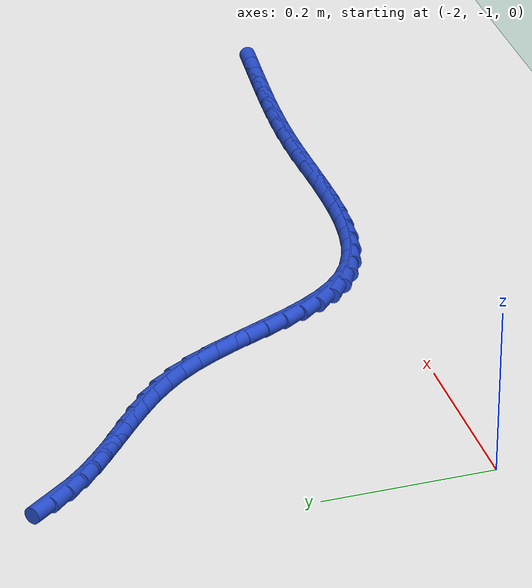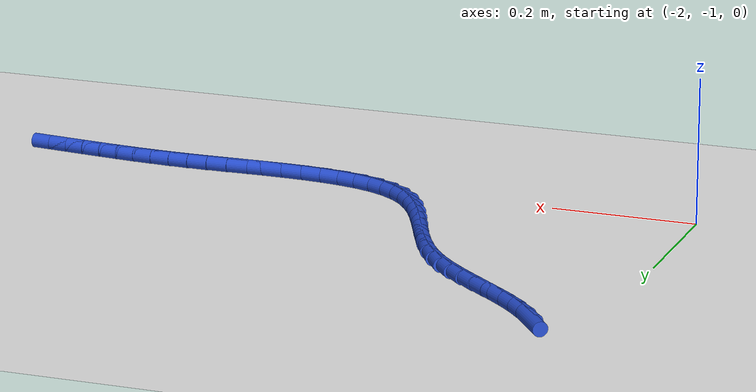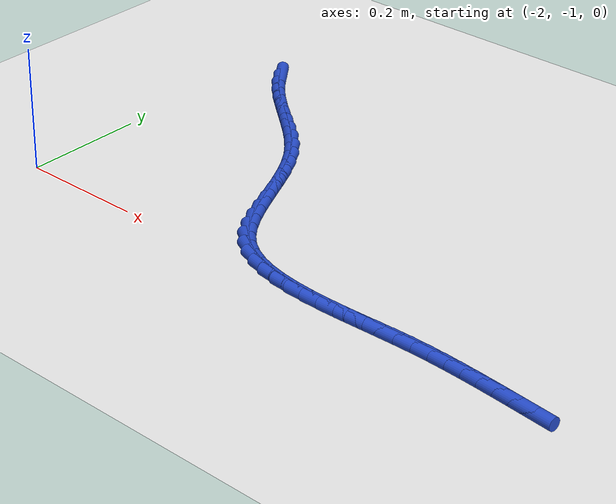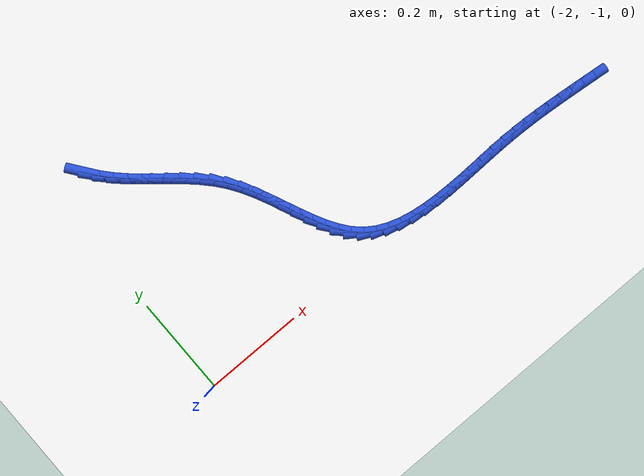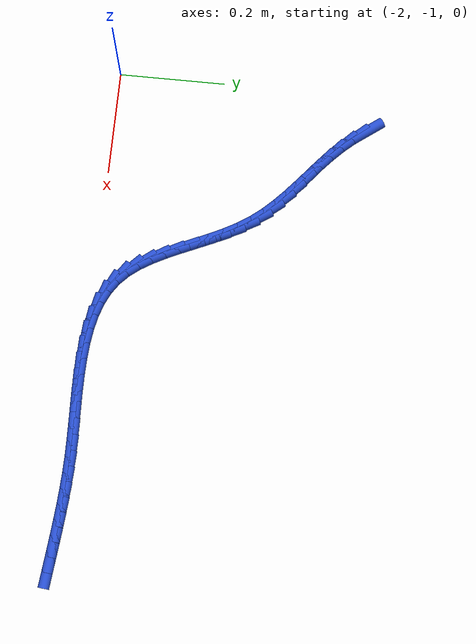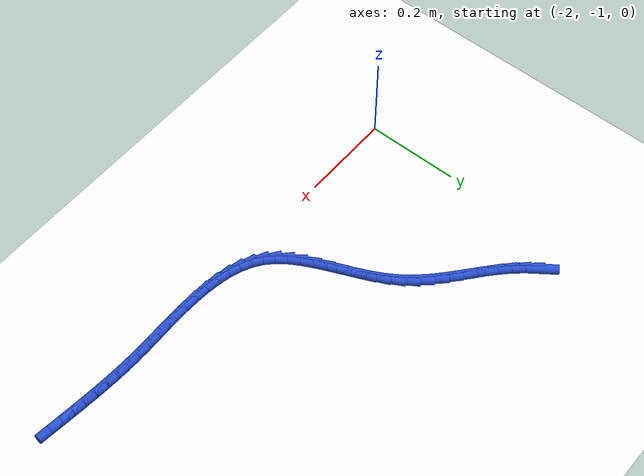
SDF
<sdf version="1.6">
 <world name="default">
  <model name="ground_plane">
   <static>1</static>
   <link name="link">
    <collision name="collision">
     <geometry><plane><normal>0 0 1</normal><size>100 100</size></plane></geometry>
     <surface><friction><ode><mu>100</mu><mu2>50</mu2></ode></friction></surface>
    </collision>
    <visual name="visual">
     <cast_shadows>0</cast_shadows>
     <geometry><plane><normal>0 0 1</normal><size>100 100</size></plane></geometry>
     <material>
      <script><uri>file://media/materials/scripts/gazebo.material</uri><name>Gazebo/WhiteGlow</name></script>
     </material>
    </visual>
   </link>
  </model>
  <model name="line">
   <link name="link_140">
    <pose>-1.9223482389673763 -0.5277540960913943 0.01 0 1.57 -0.9330856274969781</pose>
    <collision name="collision">
     <geometry><cylinder><radius>0.01</radius><length>0.08</length></cylinder></geometry>
    </collision>
    <visual name="visual">
     <material>
      <script><name>Gazebo/Blue</name><uri>file://media/materials/scripts/gazebo.material</uri></script>
     </material>
     <geometry><cylinder><radius>0.01</radius><length>0.08</length></cylinder></geometry>
    </visual>
   </link>
   <link name="link_141">
    <pose>-1.906208143145568 -0.5495358515870702 0.01 0 1.57 -0.846612982868887</pose>
    <collision name="collision">
     <geometry><cylinder><radius>0.01</radius><length>0.08</length></cylinder></geometry>
    </collision>
    <visual name="visual">
     <material>
      <script><name>Gazebo/Blue</name><uri>file://media/materials/scripts/gazebo.material</uri></script>
     </material>
     <geometry><cylinder><radius>0.01</radius><length>0.08</length></cylinder></geometry>
    </visual>
   </link>
   <link name="link_142">
    <pose>-1.8882506804202601 -0.5698383188616343 0.01 0 1.57 -0.7762770678654984</pose>
    <collision name="collision">
     <geometry><cylinder><radius>0.01</radius><length>0.08</length></cylinder></geometry>
    </collision>
    <visual name="visual">
     <material>
      <script><name>Gazebo/Blue</name><uri>file://media/materials/scripts/gazebo.material</uri></script>
     </material>
     <geometry><cylinder><radius>0.01</radius><length>0.08</length></cylinder></geometry>
    </visual>
   </link>
   <link name="link_143">
    <pose>-1.8687967788251691 -0.5889405366556759 0.01 0 1.57 -0.7286088435730407</pose>
    <collision name="collision">
     <geometry><cylinder><radius>0.01</radius><length>0.08</length></cylinder></geometry>
    </collision>
    <visual name="visual">
     <material>
      <script><name>Gazebo/Blue</name><uri>file://media/materials/scripts/gazebo.material</uri></script>
     </material>
     <geometry><cylinder><radius>0.01</radius><length>0.08</length></cylinder></geometry>
    </visual>
   </link>
   <link name="link_144">
    <pose>-1.848290756728871 -0.6072404253498115 0.01 0 1.57 -0.7030840493400263</pose>
    <collision name="collision">
     <geometry><cylinder><radius>0.01</radius><length>0.08</length></cylinder></geometry>
    </collision>
    <visual name="visual">
     <material>
      <script><name>Gazebo/Blue</name><uri>file://media/materials/scripts/gazebo.material</uri></script>
     </material>
     <geometry><cylinder><radius>0.01</radius><length>0.08</length></cylinder></geometry>
    </visual>
   </link>
   <link name="link_145">
    <pose>-1.8271769610789375 -0.6251359328593733 0.01 0 1.57 -0.6991062637994179</pose>
    <collision name="collision">
     <geometry><cylinder><radius>0.01</radius><length>0.08</length></cylinder></geometry>
    </collision>
    <visual name="visual">
     <material>
      <script><name>Gazebo/Blue</name><uri>file://media/materials/scripts/gazebo.material</uri></script>
     </material>
     <geometry><cylinder><radius>0.01</radius><length>0.08</length></cylinder></geometry>
    </visual>
   </link>
   <link name="link_146">
    <pose>-1.8058997388229396 -0.6430250070996935 0.01 0 1.57 -0.7163652625239186</pose>
    <collision name="collision">
     <geometry><cylinder><radius>0.01</radius><length>0.08</length></cylinder></geometry>
    </collision>
    <visual name="visual">
     <material>
      <script><name>Gazebo/Blue</name><uri>file://media/materials/scripts/gazebo.material</uri></script>
     </material>
     <geometry><cylinder><radius>0.01</radius><length>0.08</length></cylinder></geometry>
    </visual>
   </link>
   <link name="link_147">
    <pose>-1.7849034369084493 -0.6613055959861046 0.01 0 1.57 -0.7548801876550394</pose>
    <collision name="collision">
     <geometry><cylinder><radius>0.01</radius><length>0.08</length></cylinder></geometry>
    </collision>
    <visual name="visual">
     <material>
      <script><name>Gazebo/Blue</name><uri>file://media/materials/scripts/gazebo.material</uri></script>
     </material>
     <geometry><cylinder><radius>0.01</radius><length>0.08</length></cylinder></geometry>
    </visual>
   </link>
   <link name="link_148">
    <pose>-1.764632402283037 -0.6803756474339379 0.01 0 1.57 -0.8147615294196001</pose>
    <collision name="collision">
     <geometry><cylinder><radius>0.01</radius><length>0.08</length></cylinder></geometry>
    </collision>
    <visual name="visual">
     <material>
      <script><name>Gazebo/Blue</name><uri>file://media/materials/scripts/gazebo.material</uri></script>
     </material>
     <geometry><cylinder><radius>0.01</radius><length>0.08</length></cylinder></geometry>
    </visual>
   </link>
   <link name="link_149">
    <pose>-1.745530981894275 -0.7006331093585256 0.01 0 1.57 -0.895686924525156</pose>
    <collision name="collision">
     <geometry><cylinder><radius>0.01</radius><length>0.08</length></cylinder></geometry>
    </collision>
    <visual name="visual">
     <material>
      <script><name>Gazebo/Blue</name><uri>file://media/materials/scripts/gazebo.material</uri></script>
     </material>
     <geometry><cylinder><radius>0.01</radius><length>0.08</length></cylinder></geometry>
    </visual>
   </link>
   <link name="link_150">
    <pose>-1.728043522689734 -0.7224759296752005 0.01 0 1.57 -0.9910408552351094</pose>
    <collision name="collision">
     <geometry><cylinder><radius>0.01</radius><length>0.08</length></cylinder></geometry>
    </collision>
    <visual name="visual">
     <material>
      <script><name>Gazebo/Blue</name><uri>file://media/materials/scripts/gazebo.material</uri></script>
     </material>
     <geometry><cylinder><radius>0.01</radius><length>0.08</length></cylinder></geometry>
    </visual>
   </link>
   <link name="link_151">
    <pose>-1.7125115265817583 -0.7461954548987909 0.01 0 1.57 -1.0695132190711465</pose>
    <collision name="collision">
     <geometry><cylinder><radius>0.01</radius><length>0.08</length></cylinder></geometry>
    </collision>
    <visual name="visual">
     <material>
      <script><name>Gazebo/Blue</name><uri>file://media/materials/scripts/gazebo.material</uri></script>
     </material>
     <geometry><cylinder><radius>0.01</radius><length>0.08</length></cylinder></geometry>
    </visual>
   </link>
   <link name="link_152">
    <pose>-1.6986702541919536 -0.7714546475828336 0.01 0 1.57 -1.1218790707168431</pose>
    <collision name="collision">
     <geometry><cylinder><radius>0.01</radius><length>0.08</length></cylinder></geometry>
    </collision>
    <visual name="visual">
     <material>
      <script><name>Gazebo/Blue</name><uri>file://media/materials/scripts/gazebo.material</uri></script>
     </material>
     <geometry><cylinder><radius>0.01</radius><length>0.08</length></cylinder></geometry>
    </visual>
   </link>
   <link name="link_153">
    <pose>-1.6860335910732098 -0.797687009594606 0.01 0 1.57 -1.1500959827485644</pose>
    <collision name="collision">
     <geometry><cylinder><radius>0.01</radius><length>0.08</length></cylinder></geometry>
    </collision>
    <visual name="visual">
     <material>
      <script><name>Gazebo/Blue</name><uri>file://media/materials/scripts/gazebo.material</uri></script>
     </material>
     <geometry><cylinder><radius>0.01</radius><length>0.08</length></cylinder></geometry>
    </visual>
   </link>
   <link name="link_154">
    <pose>-1.6741150971118652 -0.8243257052400209 0.01 0 1.57 -1.1551395692699147</pose>
    <collision name="collision">
     <geometry><cylinder><radius>0.01</radius><length>0.08</length></cylinder></geometry>
    </collision>
    <visual name="visual">
     <material>
      <script><name>Gazebo/Blue</name><uri>file://media/materials/scripts/gazebo.material</uri></script>
     </material>
     <geometry><cylinder><radius>0.01</radius><length>0.08</length></cylinder></geometry>
    </visual>
   </link>
   <link name="link_155">
    <pose>-1.6624283321942568 -0.8508038988249901 0.01 0 1.57 -1.1365823651312394</pose>
    <collision name="collision">
     <geometry><cylinder><radius>0.01</radius><length>0.08</length></cylinder></geometry>
    </collision>
    <visual name="visual">
     <material>
      <script><name>Gazebo/Blue</name><uri>file://media/materials/scripts/gazebo.material</uri></script>
     </material>
     <geometry><cylinder><radius>0.01</radius><length>0.08</length></cylinder></geometry>
    </visual>
   </link>
   <link name="link_156">
    <pose>-1.6504868562067236 -0.8765547546554244 0.01 0 1.57 -1.0923992828780926</pose>
    <collision name="collision">
     <geometry><cylinder><radius>0.01</radius><length>0.08</length></cylinder></geometry>
    </collision>
    <visual name="visual">
     <material>
      <script><name>Gazebo/Blue</name><uri>file://media/materials/scripts/gazebo.material</uri></script>
     </material>
     <geometry><cylinder><radius>0.01</radius><length>0.08</length></cylinder></geometry>
    </visual>
   </link>
   <link name="link_157">
    <pose>-1.6378042290356025 -0.9010114370372361 0.01 0 1.57 -1.0189748012328272</pose>
    <collision name="collision">
     <geometry><cylinder><radius>0.01</radius><length>0.08</length></cylinder></geometry>
    </collision>
    <visual name="visual">
     <material>
      <script><name>Gazebo/Blue</name><uri>file://media/materials/scripts/gazebo.material</uri></script>
     </material>
     <geometry><cylinder><radius>0.01</radius><length>0.08</length></cylinder></geometry>
    </visual>
   </link>
   <link name="link_158">
    <pose>-1.623894010567231 -0.9236071102763368 0.01 0 1.57 -0.9116664858856686</pose>
    <collision name="collision">
     <geometry><cylinder><radius>0.01</radius><length>0.08</length></cylinder></geometry>
    </collision>
    <visual name="visual">
     <material>
      <script><name>Gazebo/Blue</name><uri>file://media/materials/scripts/gazebo.material</uri></script>
     </material>
     <geometry><cylinder><radius>0.01</radius><length>0.08</length></cylinder></geometry>
    </visual>
   </link>
   <link name="link_159">
    <pose>-1.6082697606879472 -0.9437749386786386 0.01 0 1.57 -0.7668106619313282</pose>
    <collision name="collision">
     <geometry><cylinder><radius>0.01</radius><length>0.08</length></cylinder></geometry>
    </collision>
    <visual name="visual">
     <material>
      <script><name>Gazebo/Blue</name><uri>file://media/materials/scripts/gazebo.material</uri></script>
     </material>
     <geometry><cylinder><radius>0.01</radius><length>0.08</length></cylinder></geometry>
    </visual>
   </link>
   <link name="link_160">
    <pose>-1.5904454847217435 -0.9609486152231836 0.01 0 1.57 -0.598264933200944</pose>
    <collision name="collision">
     <geometry><cylinder><radius>0.01</radius><length>0.08</length></cylinder></geometry>
    </collision>
    <visual name="visual">
     <material>
      <script><name>Gazebo/Blue</name><uri>file://media/materials/scripts/gazebo.material</uri></script>
     </material>
     <geometry><cylinder><radius>0.01</radius><length>0.08</length></cylinder></geometry>
    </visual>
   </link>
   <link name="link_161">
    <pose>-1.570131312769 -0.9747946059795239 0.01 0 1.57 -0.44529202706095866</pose>
    <collision name="collision">
     <geometry><cylinder><radius>0.01</radius><length>0.08</length></cylinder></geometry>
    </collision>
    <visual name="visual">
     <material>
      <script><name>Gazebo/Blue</name><uri>file://media/materials/scripts/gazebo.material</uri></script>
     </material>
     <geometry><cylinder><radius>0.01</radius><length>0.08</length></cylinder></geometry>
    </visual>
   </link>
   <link name="link_162">
    <pose>-1.5475403903581038 -0.9855763870325077 0.01 0 1.57 -0.31748713642335363</pose>
    <collision name="collision">
     <geometry><cylinder><radius>0.01</radius><length>0.08</length></cylinder></geometry>
    </collision>
    <visual name="visual">
     <material>
      <script><name>Gazebo/Blue</name><uri>file://media/materials/scripts/gazebo.material</uri></script>
     </material>
     <geometry><cylinder><radius>0.01</radius><length>0.08</length></cylinder></geometry>
    </visual>
   </link>
   <link name="link_163">
    <pose>-1.5229653776506862 -0.9936518073823366 0.01 0 1.57 -0.21467178880289775</pose>
    <collision name="collision">
     <geometry><cylinder><radius>0.01</radius><length>0.08</length></cylinder></geometry>
    </collision>
    <visual name="visual">
     <material>
      <script><name>Gazebo/Blue</name><uri>file://media/materials/scripts/gazebo.material</uri></script>
     </material>
     <geometry><cylinder><radius>0.01</radius><length>0.08</length></cylinder></geometry>
    </visual>
   </link>
   <link name="link_164">
    <pose>-1.4966989348083815 -0.999378716029215 0.01 0 1.57 -0.13423992547458968</pose>
    <collision name="collision">
     <geometry><cylinder><radius>0.01</radius><length>0.08</length></cylinder></geometry>
    </collision>
    <visual name="visual">
     <material>
      <script><name>Gazebo/Blue</name><uri>file://media/materials/scripts/gazebo.material</uri></script>
     </material>
     <geometry><cylinder><radius>0.01</radius><length>0.08</length></cylinder></geometry>
    </visual>
   </link>
   <link name="link_165">
    <pose>-1.4690337219928198 -1.0031149619733457 0.01 0 1.57 -0.07297880306001986</pose>
    <collision name="collision">
     <geometry><cylinder><radius>0.01</radius><length>0.08</length></cylinder></geometry>
    </collision>
    <visual name="visual">
     <material>
      <script><name>Gazebo/Blue</name><uri>file://media/materials/scripts/gazebo.material</uri></script>
     </material>
     <geometry><cylinder><radius>0.01</radius><length>0.08</length></cylinder></geometry>
    </visual>
   </link>
   <link name="link_166">
    <pose>-1.4402623993656345 -1.0052183942149326 0.01 0 1.57 -0.02799585807324242</pose>
    <collision name="collision">
     <geometry><cylinder><radius>0.01</radius><length>0.08</length></cylinder></geometry>
    </collision>
    <visual name="visual">
     <material>
      <script><name>Gazebo/Blue</name><uri>file://media/materials/scripts/gazebo.material</uri></script>
     </material>
     <geometry><cylinder><radius>0.01</radius><length>0.08</length></cylinder></geometry>
    </visual>
   </link>
   <link name="link_167">
    <pose>-1.4106776270884573 -1.0060468617541785 0.01 0 1.57 0.0029445690923859155</pose>
    <collision name="collision">
     <geometry><cylinder><radius>0.01</radius><length>0.08</length></cylinder></geometry>
    </collision>
    <visual name="visual">
     <material>
      <script><name>Gazebo/Blue</name><uri>file://media/materials/scripts/gazebo.material</uri></script>
     </material>
     <geometry><cylinder><radius>0.01</radius><length>0.08</length></cylinder></geometry>
    </visual>
   </link>
   <link name="link_168">
    <pose>-1.380572065322921 -1.005958213591287 0.01 0 1.57 0.02135633137222434</pose>
    <collision name="collision">
     <geometry><cylinder><radius>0.01</radius><length>0.08</length></cylinder></geometry>
    </collision>
    <visual name="visual">
     <material>
      <script><name>Gazebo/Blue</name><uri>file://media/materials/scripts/gazebo.material</uri></script>
     </material>
     <geometry><cylinder><radius>0.01</radius><length>0.08</length></cylinder></geometry>
    </visual>
   </link>
   <link name="link_169">
    <pose>-1.3502383742306574 -1.0053102987264617 0.01 0 1.57 0.02805197646473139</pose>
    <collision name="collision">
     <geometry><cylinder><radius>0.01</radius><length>0.08</length></cylinder></geometry>
    </collision>
    <visual name="visual">
     <material>
      <script><name>Gazebo/Blue</name><uri>file://media/materials/scripts/gazebo.material</uri></script>
     </material>
     <geometry><cylinder><radius>0.01</radius><length>0.08</length></cylinder></geometry>
    </visual>
   </link>
   <link name="link_170">
    <pose>-1.3199692139732984 -1.0044609661599055 0.01 0 1.57 0.023160540331208932</pose>
    <collision name="collision">
     <geometry><cylinder><radius>0.01</radius><length>0.08</length></cylinder></geometry>
    </collision>
    <visual name="visual">
     <material>
      <script><name>Gazebo/Blue</name><uri>file://media/materials/scripts/gazebo.material</uri></script>
     </material>
     <geometry><cylinder><radius>0.01</radius><length>0.08</length></cylinder></geometry>
    </visual>
   </link>
   <link name="link_171">
    <pose>-1.2900572447124774 -1.0037680648918221 0.01 0 1.57 0.006128567301629869</pose>
    <collision name="collision">
     <geometry><cylinder><radius>0.01</radius><length>0.08</length></cylinder></geometry>
    </collision>
    <visual name="visual">
     <material>
      <script><name>Gazebo/Blue</name><uri>file://media/materials/scripts/gazebo.material</uri></script>
     </material>
     <geometry><cylinder><radius>0.01</radius><length>0.08</length></cylinder></geometry>
    </visual>
   </link>
   <link name="link_172">
    <pose>-1.2607944185215434 -1.0035887234467542 0.01 0 1.57 -0.019481391974966514</pose>
    <collision name="collision">
     <geometry><cylinder><radius>0.01</radius><length>0.08</length></cylinder></geometry>
    </collision>
    <visual name="visual">
     <material>
      <script><name>Gazebo/Blue</name><uri>file://media/materials/scripts/gazebo.material</uri></script>
     </material>
     <geometry><cylinder><radius>0.01</radius><length>0.08</length></cylinder></geometry>
    </visual>
   </link>
   <link name="link_173">
    <pose>-1.2323381326894192 -1.0041431616479612 0.01 0 1.57 -0.043535429829889005</pose>
    <collision name="collision">
     <geometry><cylinder><radius>0.01</radius><length>0.08</length></cylinder></geometry>
    </collision>
    <visual name="visual">
     <material>
      <script><name>Gazebo/Blue</name><uri>file://media/materials/scripts/gazebo.material</uri></script>
     </material>
     <geometry><cylinder><radius>0.01</radius><length>0.08</length></cylinder></geometry>
    </visual>
   </link>
   <link name="link_174">
    <pose>-1.204552878740488 -1.005353569427068 0.01 0 1.57 -0.06401942853805592</pose>
    <collision name="collision">
     <geometry><cylinder><radius>0.01</radius><length>0.08</length></cylinder></geometry>
    </collision>
    <visual name="visual">
     <material>
      <script><name>Gazebo/Blue</name><uri>file://media/materials/scripts/gazebo.material</uri></script>
     </material>
     <geometry><cylinder><radius>0.01</radius><length>0.08</length></cylinder></geometry>
    </visual>
   </link>
   <link name="link_175">
    <pose>-1.177264623914062 -1.0071029384823609 0.01 0 1.57 -0.08034949469659432</pose>
    <collision name="collision">
     <geometry><cylinder><radius>0.01</radius><length>0.08</length></cylinder></geometry>
    </collision>
    <visual name="visual">
     <material>
      <script><name>Gazebo/Blue</name><uri>file://media/materials/scripts/gazebo.material</uri></script>
     </material>
     <geometry><cylinder><radius>0.01</radius><length>0.08</length></cylinder></geometry>
    </visual>
   </link>
   <link name="link_176">
    <pose>-1.1502993354494544 -1.0092742605121252 0.01 0 1.57 -0.09208401288894466</pose>
    <collision name="collision">
     <geometry><cylinder><radius>0.01</radius><length>0.08</length></cylinder></geometry>
    </collision>
    <visual name="visual">
     <material>
      <script><name>Gazebo/Blue</name><uri>file://media/materials/scripts/gazebo.material</uri></script>
     </material>
     <geometry><cylinder><radius>0.01</radius><length>0.08</length></cylinder></geometry>
    </visual>
   </link>
   <link name="link_177">
    <pose>-1.1234832195330349 -1.0117505993789861 0.01 0 1.57 -0.09955582913405522</pose>
    <collision name="collision">
     <geometry><cylinder><radius>0.01</radius><length>0.08</length></cylinder></geometry>
    </collision>
    <visual name="visual">
     <material>
      <script><name>Gazebo/Blue</name><uri>file://media/materials/scripts/gazebo.material</uri></script>
     </material>
     <geometry><cylinder><radius>0.01</radius><length>0.08</length></cylinder></geometry>
    </visual>
   </link>
   <link name="link_178">
    <pose>-1.096683775745639 -1.014427489952918 0.01 0 1.57 -0.10397706894289352</pose>
    <collision name="collision">
     <geometry><cylinder><radius>0.01</radius><length>0.08</length></cylinder></geometry>
    </collision>
    <visual name="visual">
     <material>
      <script><name>Gazebo/Blue</name><uri>file://media/materials/scripts/gazebo.material</uri></script>
     </material>
     <geometry><cylinder><radius>0.01</radius><length>0.08</length></cylinder></geometry>
    </visual>
   </link>
   <link name="link_179">
    <pose>-1.069856412939366 -1.0172270165601047 0.01 0 1.57 -0.10551213835482125</pose>
    <collision name="collision">
     <geometry><cylinder><radius>0.01</radius><length>0.08</length></cylinder></geometry>
    </collision>
    <visual name="visual">
     <material>
      <script><name>Gazebo/Blue</name><uri>file://media/materials/scripts/gazebo.material</uri></script>
     </material>
     <geometry><cylinder><radius>0.01</radius><length>0.08</length></cylinder></geometry>
    </visual>
   </link>
  </model>
 </world>
</sdf>
